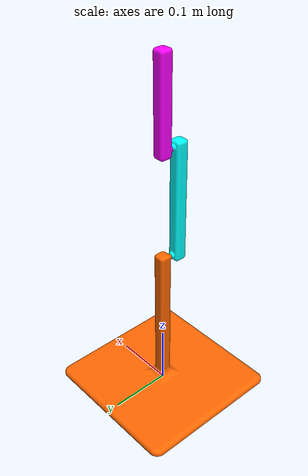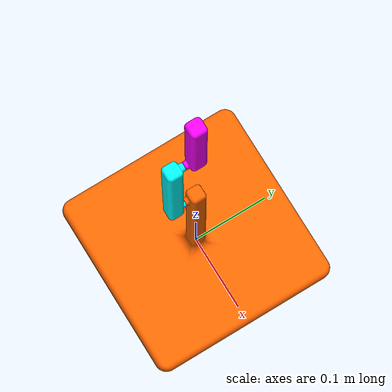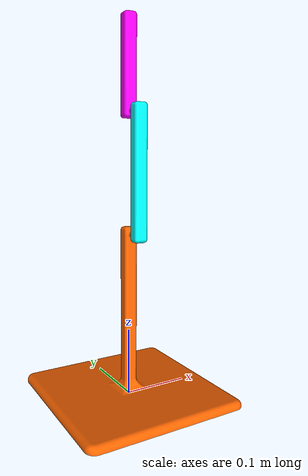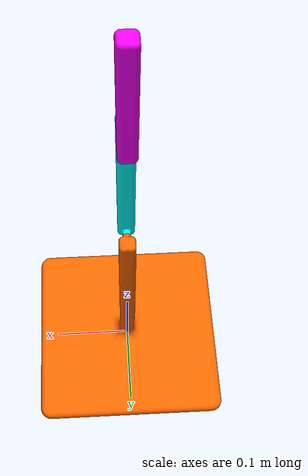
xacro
<?xml version="1.0" ?>
<robot name="rr_bot" xmlns:xacro="http://www.ros.org/wiki/xacro">

<xacro:include filename="$(find rr_bot_description)/urdf/materials.xacro" />
<xacro:include filename="$(find rr_bot_description)/urdf/rr_bot.trans" />
<xacro:include filename="$(find rr_bot_description)/urdf/rr_bot.gazebo" />
<link name="base_link">
  <inertial>
    <origin xyz="2.9905664349543436e-09 -7.455821471877891e-06 0.02238512437556862" rpy="0 0 0"/>
    <mass value="5.561675295236603"/>
    <inertia ixx="0.039038" iyy="0.039037" izz="0.048444" ixy="0.0" iyz="9e-06" ixz="0.0"/>
  </inertial>
  <visual>
    <origin xyz="0 0 0" rpy="0 0 0"/>
    <geometry>
      <mesh filename="package://rr_bot_description/meshes/base_link.stl" scale="0.001 0.001 0.001"/>
    </geometry>
    <material name="base_colour"/>
  </visual>
  <collision>
    <origin xyz="0 0 0" rpy="0 0 0"/>
    <geometry>
      <mesh filename="package://rr_bot_description/meshes/base_link.stl" scale="0.001 0.001 0.001"/>
    </geometry>
  </collision>
</link>

<link name="arm1_v5_1">
  <inertial>
    <origin xyz="-2.833715213307269e-15 -0.014866406841207703 0.09000000357953936" rpy="0 0 0"/>
    <mass value="0.595327569316126"/>
    <inertia ixx="0.001999" iyy="0.001998" izz="3.7e-05" ixy="0.0" iyz="-0.0" ixz="0.0"/>
  </inertial>
  <visual>
    <origin xyz="-0.0 0.015 -0.25" rpy="0 0 0"/>
    <geometry>
      <mesh filename="package://rr_bot_description/meshes/arm1_v5_1.stl" scale="0.001 0.001 0.001"/>
    </geometry>
    <material name="arm1_colour"/>
  </visual>
  <collision>
    <origin xyz="-0.0 0.015 -0.25" rpy="0 0 0"/>
    <geometry>
      <mesh filename="package://rr_bot_description/meshes/arm1_v5_1.stl" scale="0.001 0.001 0.001"/>
    </geometry>
  </collision>
</link>

<link name="arm2_v4_1">
  <inertial>
    <origin xyz="-2.438455743822735e-13 0.014910342072508347 0.06452794998082584" rpy="0 0 0"/>
    <mass value="0.4435284754173208"/>
    <inertia ixx="0.000834" iyy="0.000833" izz="2.7e-05" ixy="-0.0" iyz="-3e-06" ixz="0.0"/>
  </inertial>
  <visual>
    <origin xyz="-0.0 0.015 -0.43" rpy="0 0 0"/>
    <geometry>
      <mesh filename="package://rr_bot_description/meshes/arm2_v4_1.stl" scale="0.001 0.001 0.001"/>
    </geometry>
    <material name="arm2_colour"/>
  </visual>
  <collision>
    <origin xyz="-0.0 0.015 -0.43" rpy="0 0 0"/>
    <geometry>
      <mesh filename="package://rr_bot_description/meshes/arm2_v4_1.stl" scale="0.001 0.001 0.001"/>
    </geometry>
  </collision>
</link>

<joint name="Revolute 4" type="continuous">
  <origin xyz="0.0 -0.015 0.25" rpy="0 0 0"/>
  <parent link="base_link"/>
  <child link="arm1_v5_1"/>
  <axis xyz="0.0 -1.0 0.0"/>
</joint>

<joint name="Revolute 5" type="continuous">
  <origin xyz="0.0 0.0 0.18" rpy="0 0 0"/>
  <parent link="arm1_v5_1"/>
  <child link="arm2_v4_1"/>
  <axis xyz="-0.0 -1.0 0.0"/>
</joint>

</robot>

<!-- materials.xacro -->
<robot name="rr_bot" xmlns:xacro="http://www.ros.org/wiki/xacro" >

<material name="silver_default">
  <color rgba="0.700 0.700 0.700 1.000"/>
</material>
<material name="steel_satin">
  <color rgba="0.6274509803921569 0.6274509803921569 0.6274509803921569 1.0"/>
</material>
<material name="base_colour">
  <color rgba="1.0 0.4 0.0 1.0"/>
</material>
<material name="arm1_colour">
  <color rgba="0.0 1.0 1.0 1.0"/>
</material>
<material name="arm2_colour">
  <color rgba="1.0 0.0 1.0 1.0"/>
</material>

</robot>

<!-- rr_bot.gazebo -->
<robot name="rr_bot" xmlns:xacro="http://www.ros.org/wiki/xacro" >

<xacro:property name="body_color" value="Gazebo/Silver" />

<gazebo>
  <plugin name="control" filename="libgazebo_ros_control.so"/>
</gazebo>
<gazebo reference="base_link">
  <material>${body_color}</material>
  <mu1>0.2</mu1>
  <mu2>0.2</mu2>
  <selfCollide>true</selfCollide>
  <gravity>true</gravity>
</gazebo>

<gazebo reference="arm1_v5_1">
  <material>${body_color}</material>
  <mu1>0.2</mu1>
  <mu2>0.2</mu2>
  <selfCollide>true</selfCollide>
</gazebo>

<gazebo reference="arm2_v4_1">
  <material>${body_color}</material>
  <mu1>0.2</mu1>
  <mu2>0.2</mu2>
  <selfCollide>true</selfCollide>
</gazebo>

</robot>
